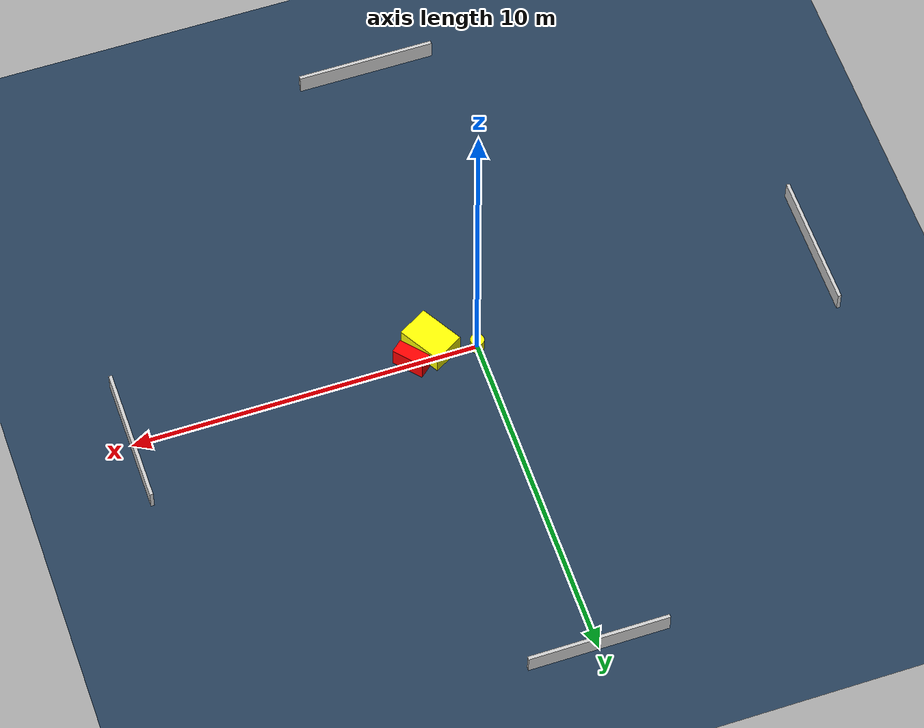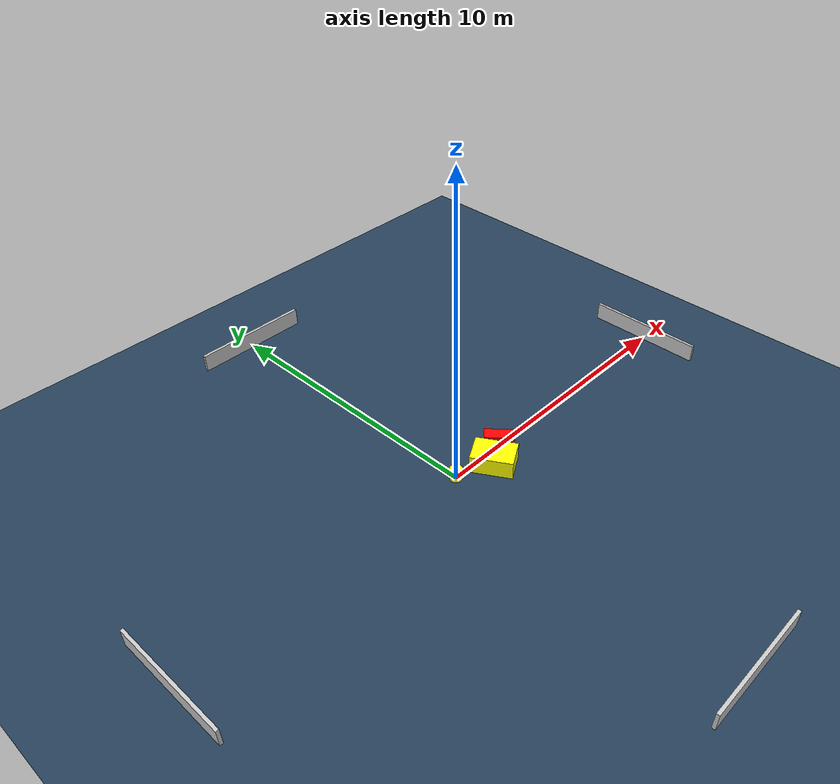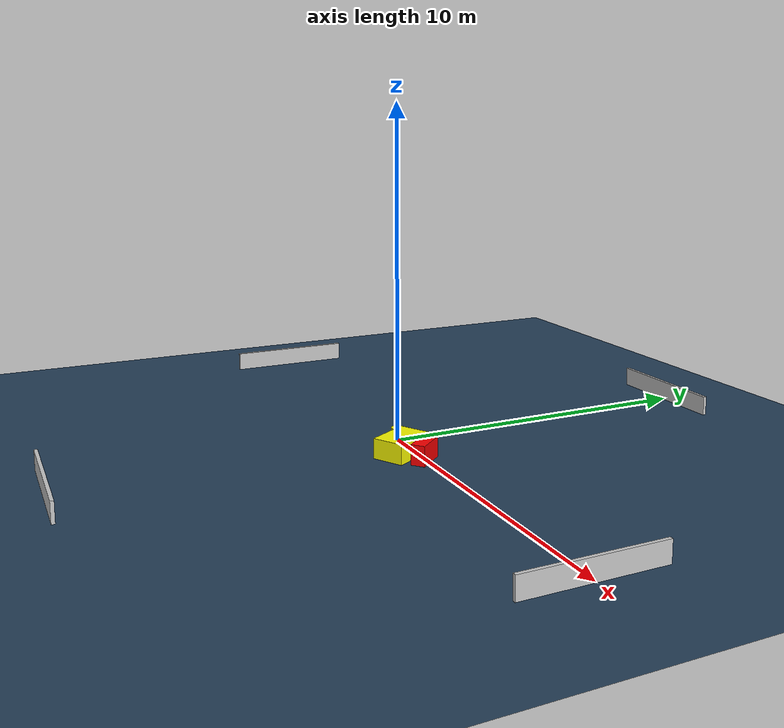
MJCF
<?xml version="1.0" ?>
<mujoco model="generated_environment">
  <option timestep="0.01" integrator="RK4" cone="elliptic"/>
  <default>
    <geom density="1"/>
  </default>
  <asset>
    <texture builtin="gradient" height="3072" name="skybox" rgb1="0.3 0.5 0.7" rgb2="0 0 0" type="skybox" width="512"/>
    <texture builtin="checker" height="300" name="groundplane" rgb1="0.2 0.3 0.4" rgb2="0.1 0.2 0.3" type="2d" width="300"/>
    <material name="groundplane" reflectance="0.2" texrepeat="5 5" texture="groundplane"/>
  </asset>
  <worldbody>
    <light dir="0 0 -1" directional="true" pos="0 0 1.5"/>
    <geom condim="3" friction="0.5 0.005 0.001" material="groundplane" name="floor" pos="0 0 0" size="0 0 0.05" type="plane"/>
    <body name="walls">
      <geom name="wall_1" condim="4" pos="-10.0 0.0 0.3" rgba="0.800000011920929 0.800000011920929 0.800000011920929 1.0" size="0.05 2.0 0.3" type="box"/>
      <geom name="wall_2" condim="4" pos="10.0 0.0 0.3" rgba="0.800000011920929 0.800000011920929 0.800000011920929 1.0" size="0.05 2.0 0.3" type="box"/>
      <geom name="wall_3" condim="4" pos="0.0 -10.0 0.3" rgba="0.800000011920929 0.800000011920929 0.800000011920929 1.0" size="2.0 0.05 0.3" type="box"/>
      <geom name="wall_4" condim="4" pos="0.0 10.0 0.3" rgba="0.800000011920929 0.800000011920929 0.800000011920929 1.0" size="2.0 0.05 0.3" type="box"/>
    </body>
    <body name="robot">
      <joint name="joint_x" type="slide" pos="0 0 0" axis="1 0 0"/>
      <joint name="joint_y" type="slide" pos="0 0 0" axis="0 1 0"/>
      <geom name="robot" type="cylinder" pos="0.0 0.0 0.2" size="0.2 0.2 0.0" mass="5.0" friction="1.0 0.005 0.0001" condim="4" rgba="1.0 1.0 0.0 1.0"/>
    </body>
    <body name="obstacle_1_movable">
      <geom name="obstacle_1_movable" condim="4" pos="1.2156404945450994 -0.44340027993896935 0.3" euler="0 0 210.05285723062175" friction="0.0 0.005 0.001" rgba="1.0 1.0 0.0 1.0" size="0.4790979304168811 0.6762925963413646 0.3" type="box" mass="0.1"/>
      <joint type="free"/>
    </body>
    <body name="obstacle_2_static">
      <geom name="obstacle_2_static" condim="4" pos="1.9131605876048425 -0.04525834762215806 0.3" euler="0 0 310.6478206703163" friction="0.0 0.005 0.001" rgba="1.0 0.0 0.0 1.0" size="0.47574917767862646 0.20938216028077344 0.3" type="box"/>
    </body>
  </worldbody>
  <actuator>
    <motor name="actuator_x" joint="joint_x" gear="1" ctrlrange="-1 1"/>
    <motor name="actuator_y" joint="joint_y" gear="1" ctrlrange="-1 1"/>
  </actuator>
</mujoco>
